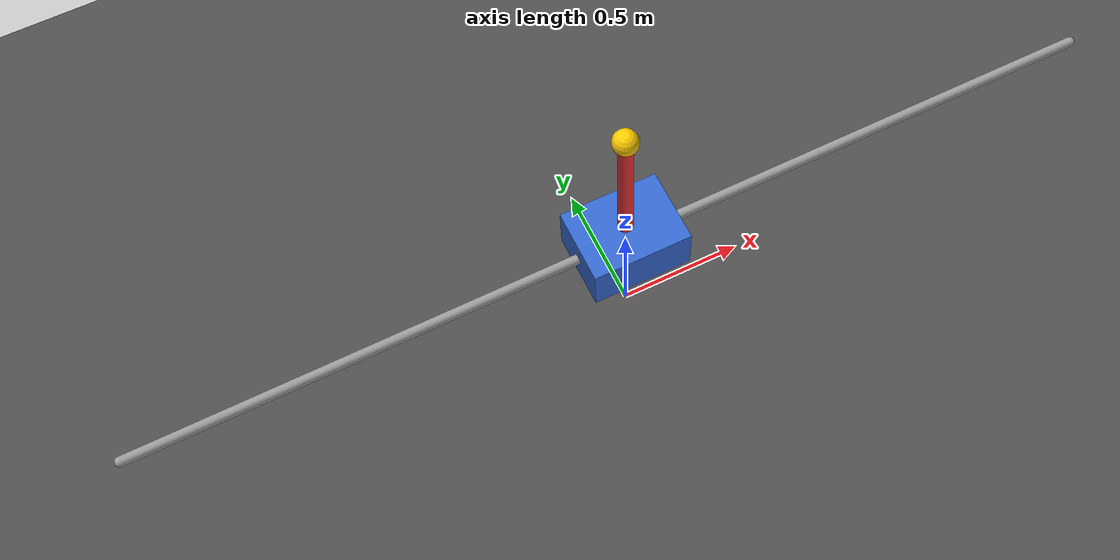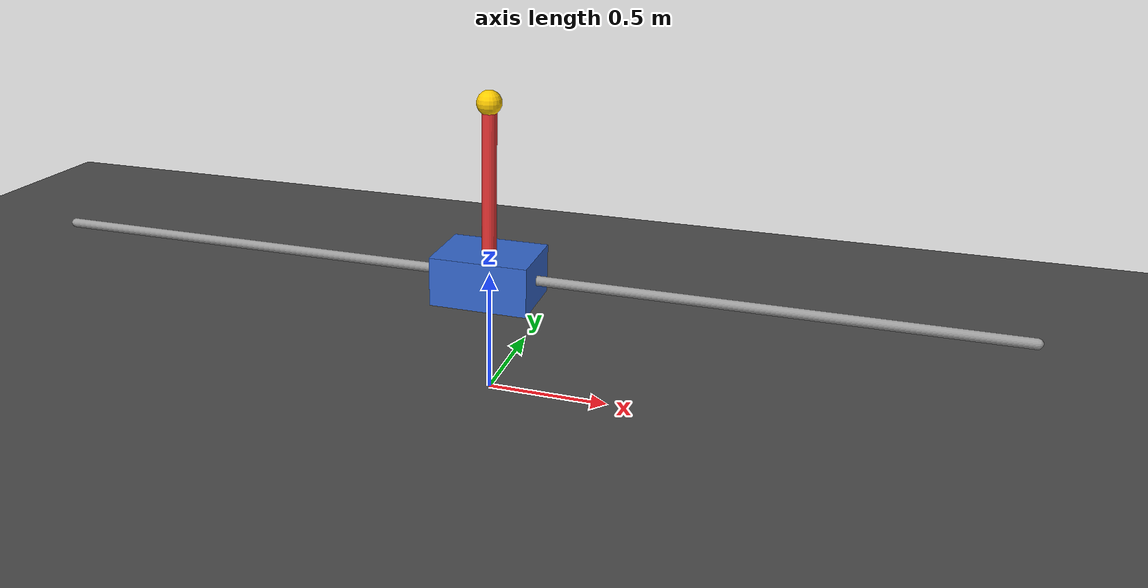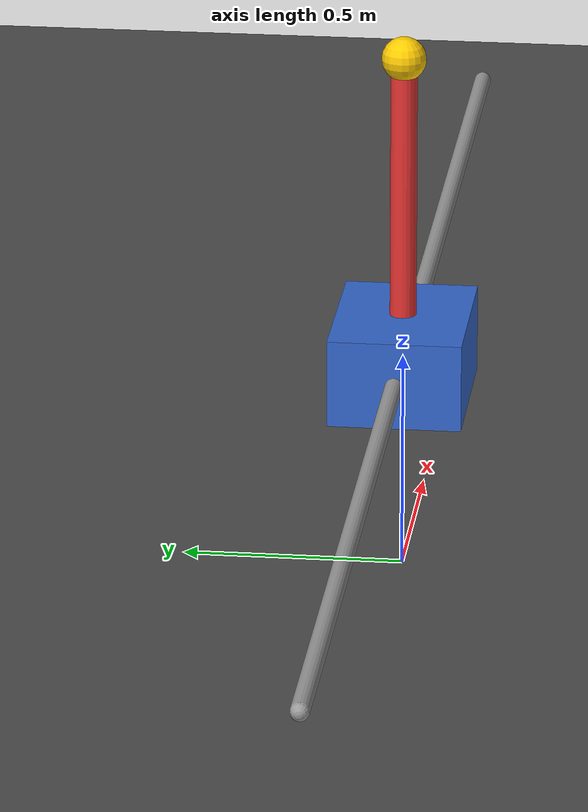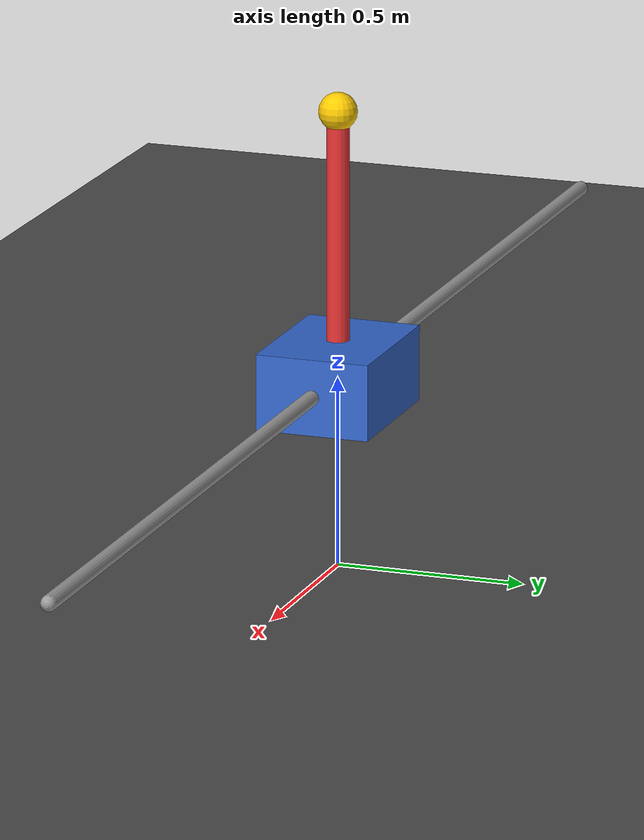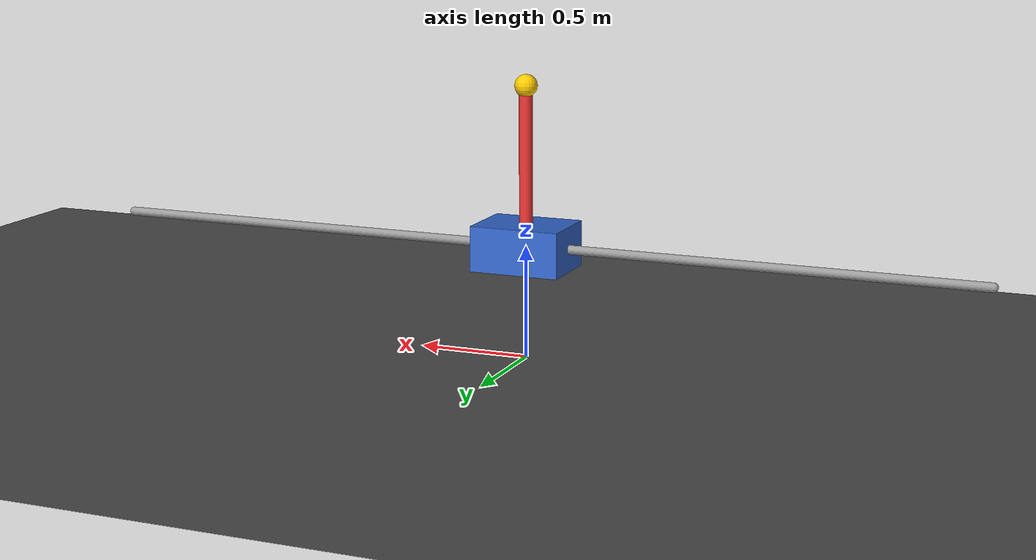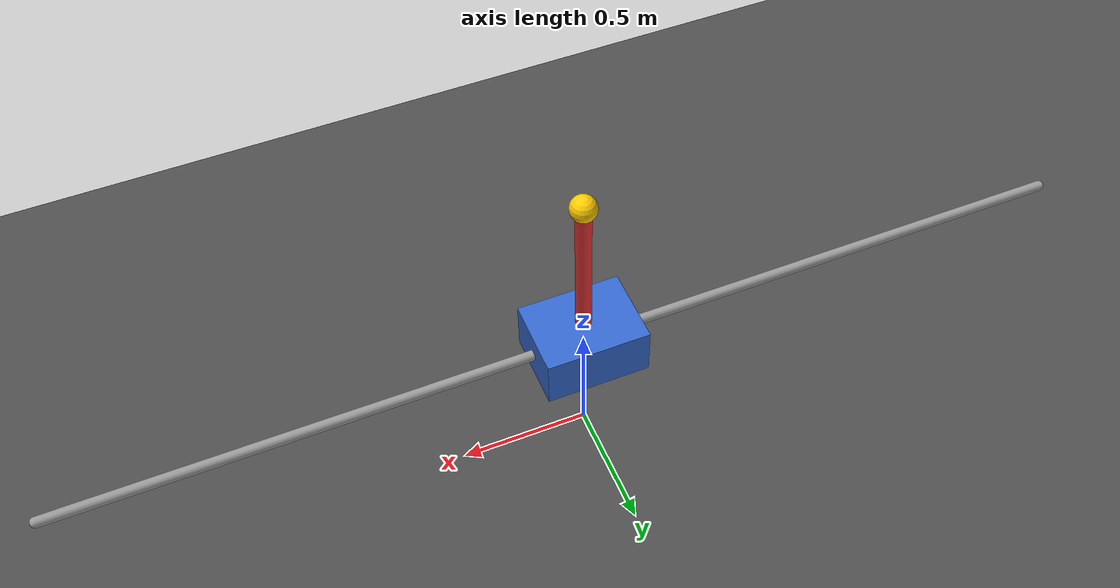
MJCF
<mujoco model="scp-cartpole">
  <option timestep="0.02" gravity="0 0 -9.81"/>

  <worldbody>
    <light diffuse="1 1 1" pos="0 0 3" dir="0 0 -1"/>
    <geom name="floor" type="plane" size="5 5 0.1" rgba="0.3 0.3 0.3 1"/>
    <geom name="rail" type="capsule" fromto="-2 0 0.5 2 0 0.5" size="0.02" rgba="0.6 0.6 0.6 1"/>

    <body name="cart" pos="0 0 0.5">
      <joint name="cart_slide" type="slide" axis="1 0 0" range="-2 2" damping="0.5"/>
      <geom name="cart_geom" type="box" size="0.2 0.15 0.1" rgba="0.2 0.4 0.8 1" mass="1"/>

      <body name="pole" pos="0 0 0.1">
        <joint name="pole_hinge" type="hinge" axis="0 1 0" damping="0.01"/>
        <geom name="pole_geom" type="capsule" fromto="0 0 0 0 0 0.6" size="0.03" rgba="0.9 0.2 0.2 1" mass="0.1"/>
        <geom name="pole_tip" type="sphere" pos="0 0 0.6" size="0.05" rgba="1 0.8 0 1"/>
      </body>
    </body>
  </worldbody>

  <actuator>
    <motor joint="cart_slide" ctrlrange="-3 3" ctrllimited="true" gear="50"/>
  </actuator>
</mujoco>
